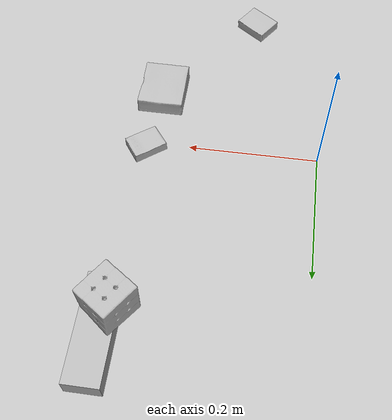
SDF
<sdf version="1.4">
  <world name="default">
    <light name="light1" type="point">
      <pose>0 0 1 0 0 0</pose>
      <diffuse>3 3 3 1</diffuse>
      <specular>3 3 3 1</specular>
    </light>
    <light name="light2" type="point">
      <pose>0 0.5 2 0 0 0</pose>
      <diffuse>1 1 1 1</diffuse>
      <specular>1 1 1 1</specular>
    </light>
    <light name="light3" type="point">
      <pose>0 0.5 2 0 0 0</pose>
      <diffuse>3 3 3 1</diffuse>
      <specular>3 3 3 1</specular>
    </light>
    <scene>
      <ambient>0.7 0.7 0.7</ambient>
    </scene>
    <model name="box1">
      <link name="link_box1">
        <collision name="default">
          <geometry>
            <mesh>
              <uri>model://jenga/collision_meshes/collision.obj</uri>
              <scale>1.0 1.0 1.0</scale>
            </mesh>
          </geometry>
          <surface>
            <friction>
              <ode>
                <mu>0.5</mu>
                <mu2>0.5</mu2>
              </ode>
            </friction>
          <contact>
        <ode>
            <max_vel>0</max_vel>
            <min_depth>0.0001</min_depth>
            <kp>1e8</kp>
        </ode>
    </contact></surface>
        </collision>
        <visual name="default">
          <geometry>
            <mesh>
              <uri>model://jenga/visual_meshes/visual.dae</uri>
              <scale>1.0 1.0 1.0</scale>
            </mesh>
          </geometry>
        </visual>
        <inertial>
          <mass>0.2062758058309555</mass>
          <pose>-2.502855807051674e-07 -0.00010250010382151231 -4.092339804628864e-05 0.0 -7.342154049184251e-07 0.0</pose>
          <inertia>
            <ixx>5.7081514e-05</ixx>
            <iyy>0.0003867828</iyy>
            <izz>0.00041292355</izz>
            <ixy>0</ixy>
            <ixz>0</ixz>
            <iyz>0</iyz>
          </inertia>
        </inertial>
      </link>
      <pose>0.2750795781612396 0.31702277064323425 0.014999904669821262 -8.515178757307557e-07 -1.8804466390061282e-07 1.5700058233193495</pose>
    </model>
    <model name="box2">
      <link name="link_box2">
        <collision name="default">
          <geometry>
            <mesh>
              <uri>model://cracker_box/collision_meshes/collision.obj</uri>
              <scale>0.25 0.25 0.25</scale>
            </mesh>
          </geometry>
          <surface>
            <friction>
              <ode>
                <mu>0.5</mu>
                <mu2>0.5</mu2>
              </ode>
            </friction>
          <contact>
        <ode>
            <max_vel>0</max_vel>
            <min_depth>0.0001</min_depth>
            <kp>1e8</kp>
        </ode>
    </contact></surface>
        </collision>
        <visual name="default">
          <geometry>
            <mesh>
              <uri>model://cracker_box/visual_meshes/visual.dae</uri>
              <scale>0.25 0.25 0.25</scale>
            </mesh>
          </geometry>
        </visual>
        <inertial>
          <mass>0.023937078192830086</mass>
          <pose>0.00023660386796109378 6.358562677633017e-05 -0.00042573839891701937 -0.00031620780222672953 -0.011106490531565828 0.0025467947702904154</pose>
          <inertia>
            <ixx>3.8053279e-06</ixx>
            <iyy>6.2833433e-06</iyy>
            <izz>8.966907e-06</izz>
            <ixy>0</ixy>
            <ixz>0</ixz>
            <iyz>0</iyz>
          </inertia>
        </inertial>
      </link>
      <pose>0.2667709290981293 0.007789816707372665 0.009096029214560986 -0.014050499063877854 -0.005016622492860139 -2.5172421961924263</pose>
    </model>
    <model name="box3">
      <link name="link_box3">
        <collision name="default">
          <geometry>
            <mesh>
              <uri>model://pudding_box/collision_meshes/collision.obj</uri>
              <scale>0.5 0.5 0.5</scale>
            </mesh>
          </geometry>
          <surface>
            <friction>
              <ode>
                <mu>0.5</mu>
                <mu2>0.5</mu2>
              </ode>
            </friction>
          <contact>
        <ode>
            <max_vel>0</max_vel>
            <min_depth>0.0001</min_depth>
            <kp>1e8</kp>
        </ode>
    </contact></surface>
        </collision>
        <visual name="default">
          <geometry>
            <mesh>
              <uri>model://pudding_box/visual_meshes/visual.dae</uri>
              <scale>0.5 0.5 0.5</scale>
            </mesh>
          </geometry>
        </visual>
        <inertial>
          <mass>0.06577561050653458</mass>
          <pose>0.0002447410661261529 0.00040339428232982755 -0.00025944135268218815 0.005213102261421096 -0.006603797796883786 0.020079827023418362</pose>
          <inertia>
            <ixx>1.8588986e-05</ixx>
            <iyy>1.2506803e-05</iyy>
            <izz>2.7451497e-05</izz>
            <ixy>0</ixy>
            <ixz>0</ixz>
            <iyz>0</iyz>
          </inertia>
        </inertial>
      </link>
      <pose>0.11674369871616364 -0.2806396484375 0.009862899780273438 0.022348161883898696 -0.011391978478923417 -2.177361239422305</pose>
    </model>
    <model name="box4">
      <link name="link_box4">
        <collision name="default">
          <geometry>
            <mesh>
              <uri>model://gelatin_box/collision_meshes/collision.obj</uri>
              <scale>1.0 1.0 1.0</scale>
            </mesh>
          </geometry>
          <surface>
            <friction>
              <ode>
                <mu>0.5</mu>
                <mu2>0.5</mu2>
              </ode>
            </friction>
          <contact>
        <ode>
            <max_vel>0</max_vel>
            <min_depth>0.0001</min_depth>
            <kp>1e8</kp>
        </ode>
    </contact></surface>
        </collision>
        <visual name="default">
          <geometry>
            <mesh>
              <uri>model://gelatin_box/visual_meshes/visual.dae</uri>
              <scale>1.0 1.0 1.0</scale>
            </mesh>
          </geometry>
        </visual>
        <inertial>
          <mass>0.21051041781902313</mass>
          <pose>0.000431961816502735 0.00011156871914863586 -0.0003640321083366871 -0.0010503719683328595 -0.0047558182256164224 0.016440557608480007</pose>
          <inertia>
            <ixx>0.0001486032</ixx>
            <iyy>0.00010614647</iyy>
            <izz>0.00022620716</izz>
            <ixy>0</ixy>
            <ixz>0</ixz>
            <iyz>0</iyz>
          </inertia>
        </inertial>
      </link>
      <pose>0.25678151845932007 -0.10482947528362274 0.015168312005698681 0.005597428930007398 -0.007304504469546681 -0.013628841889085556</pose>
    </model>
    <model name="box5">
      <link name="link_box5">
        <collision name="default">
          <geometry>
            <mesh>
              <uri>model://rubiks_cube/collision_meshes/collision.obj</uri>
              <scale>1.0 1.0 1.0</scale>
            </mesh>
          </geometry>
          <surface>
            <friction>
              <ode>
                <mu>0.5</mu>
                <mu2>0.5</mu2>
              </ode>
            </friction>
          <contact>
        <ode>
            <max_vel>0</max_vel>
            <min_depth>0.0001</min_depth>
            <kp>1e8</kp>
        </ode>
    </contact></surface>
        </collision>
        <visual name="default">
          <geometry>
            <mesh>
              <uri>model://rubiks_cube/visual_meshes/visual.dae</uri>
              <scale>1.0 1.0 1.0</scale>
            </mesh>
          </geometry>
        </visual>
        <inertial>
          <mass>0.13810032606124878</mass>
          <pose>2.6721041649580002e-05 5.256967051536776e-05 -7.264316082000732e-06 -0.05467240103362065 -0.09813937396878175 -0.03445717948301123</pose>
          <inertia>
            <ixx>7.63097e-05</ixx>
            <iyy>7.595384e-05</iyy>
            <izz>7.694205e-05</izz>
            <ixy>0</ixy>
            <ixz>0</ixz>
            <iyz>0</iyz>
          </inertia>
        </inertial>
      </link>
      <pose>0.2599925994873047 0.2871658504009247 0.058678608387708664 -1.9607061977166655e-05 1.911164206680544e-05 2.5246609582326878</pose>
    </model>
  <physics type="ode">
      <max_contacts>50</max_contacts>
      <ode>
        <solver>
          <type>quick</type>
          <iters>75</iters>
        </solver>
        <constraints>
          <contact_max_correcting_vel>0</contact_max_correcting_vel>
          <contact_surface_layer>0</contact_surface_layer>
        </constraints>
      </ode>
    </physics></world>
</sdf>
